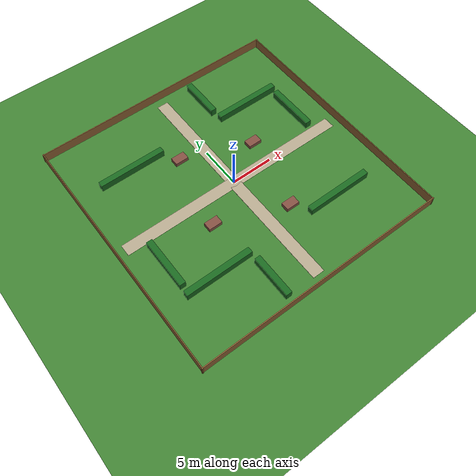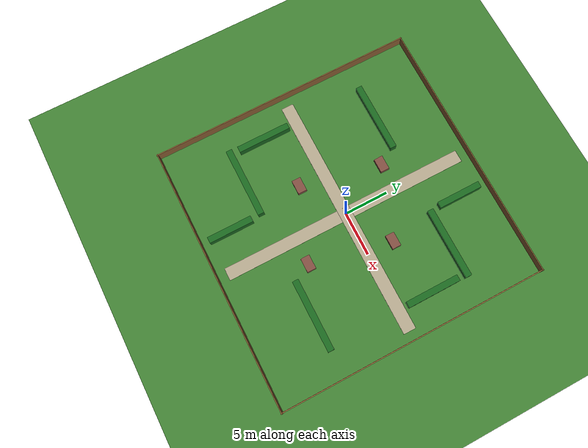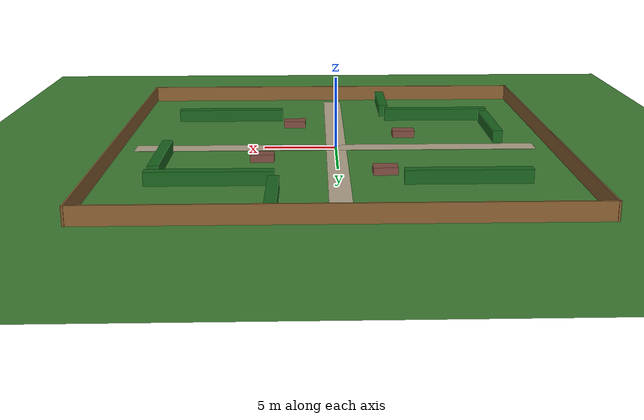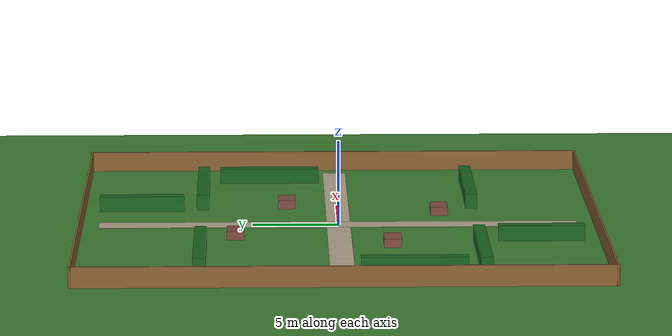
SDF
<sdf version="1.8">
 <world name="garden">
  <physics name="4ms" type="ignored">
   <max_step_size>0.004</max_step_size>
   <real_time_factor>1</real_time_factor>
  </physics>
  <plugin filename="ignition-gazebo-physics-system" name="ignition::gazebo::systems::Physics"/>
  <plugin filename="ignition-gazebo-user-commands-system" name="ignition::gazebo::systems::UserCommands"/>
  <plugin filename="ignition-gazebo-scene-broadcaster-system" name="ignition::gazebo::systems::SceneBroadcaster"/>
  <plugin filename="ignition-gazebo-sensors-system" name="ignition::gazebo::systems::Sensors">
   <render_engine>ogre2</render_engine>
  </plugin>
  <plugin filename="ignition-gazebo-contact-system" name="ignition::gazebo::systems::Contact"/>
  <plugin filename="ignition-gazebo-imu-system" name="ignition::gazebo::systems::Imu"/>
  <plugin filename="ignition-gazebo-navsat-system" name="ignition::gazebo::systems::NavSat"/>
  <spherical_coordinates>
   <surface_model>EARTH_WGS84</surface_model>
   <world_frame_orientation>ENU</world_frame_orientation>
   <latitude_deg>47.3977</latitude_deg>
   <longitude_deg>8.5456</longitude_deg>
   <elevation>0</elevation>
   <heading_deg>0</heading_deg>
  </spherical_coordinates>
  <light name="sun" type="directional">
   <pose>0 0 10 0 0 0</pose>
   <intensity>1</intensity>
   <direction>-0.5 0.1 -0.9</direction>
   <diffuse>0.8 0.8 0.8 1</diffuse>
   <specular>0.2 0.2 0.2 1</specular>
  </light>
  <model name="ground_plane">
   <static>true</static>
   <link name="link">
    <collision name="collision">
     <geometry><plane><normal>0 0 1</normal><size>100 100</size></plane></geometry>
    </collision>
    <visual name="visual">
     <geometry><plane><normal>0 0 1</normal><size>100 100</size></plane></geometry>
     <material><ambient>0.25 0.45 0.2 1</ambient><diffuse>0.25 0.5 0.2 1</diffuse></material>
    </visual>
   </link>
  </model>
  <model name="fence_n">
   <static>true</static>
   <pose>0 15 0.6 0 0 0</pose>
   <link name="l">
    <collision name="c"><geometry><box><size>30.2 0.1 1.2</size></box></geometry></collision>
    <visual name="v">
     <geometry><box><size>30.2 0.1 1.2</size></box></geometry>
     <material><ambient>0.55 0.38 0.2 1</ambient><diffuse>0.55 0.38 0.2 1</diffuse></material>
    </visual>
   </link>
  </model>
  <model name="fence_s">
   <static>true</static>
   <pose>0 -15 0.6 0 0 0</pose>
   <link name="l">
    <collision name="c"><geometry><box><size>30.2 0.1 1.2</size></box></geometry></collision>
    <visual name="v">
     <geometry><box><size>30.2 0.1 1.2</size></box></geometry>
     <material><ambient>0.55 0.38 0.2 1</ambient><diffuse>0.55 0.38 0.2 1</diffuse></material>
    </visual>
   </link>
  </model>
  <model name="fence_e">
   <static>true</static>
   <pose>15 0 0.6 0 0 0</pose>
   <link name="l">
    <collision name="c"><geometry><box><size>0.1 30.2 1.2</size></box></geometry></collision>
    <visual name="v">
     <geometry><box><size>0.1 30.2 1.2</size></box></geometry>
     <material><ambient>0.55 0.38 0.2 1</ambient><diffuse>0.55 0.38 0.2 1</diffuse></material>
    </visual>
   </link>
  </model>
  <model name="fence_w">
   <static>true</static>
   <pose>-15 0 0.6 0 0 0</pose>
   <link name="l">
    <collision name="c"><geometry><box><size>0.1 30.2 1.2</size></box></geometry></collision>
    <visual name="v">
     <geometry><box><size>0.1 30.2 1.2</size></box></geometry>
     <material><ambient>0.55 0.38 0.2 1</ambient><diffuse>0.55 0.38 0.2 1</diffuse></material>
    </visual>
   </link>
  </model>
  <model name="path_x">
   <static>true</static>
   <pose>0 0 0.011 0 0 0</pose>
   <link name="l">
    <visual name="v">
     <geometry><box><size>28 1.4 0.02</size></box></geometry>
     <material><ambient>0.7 0.65 0.55 1</ambient><diffuse>0.7 0.65 0.55 1</diffuse></material>
    </visual>
   </link>
  </model>
  <model name="path_y">
   <static>true</static>
   <pose>0 0 0.011 0 0 0</pose>
   <link name="l">
    <visual name="v">
     <geometry><box><size>1.4 28 0.02</size></box></geometry>
     <material><ambient>0.7 0.65 0.55 1</ambient><diffuse>0.7 0.65 0.55 1</diffuse></material>
    </visual>
   </link>
  </model>
  <model name="hedge_0">
   <static>true</static>
   <pose>-8 -8 0.45 0 0 0</pose>
   <link name="l">
    <collision name="c"><geometry><box><size>8 0.7 0.9</size></box></geometry></collision>
    <visual name="v">
     <geometry><box><size>8 0.7 0.9</size></box></geometry>
     <material><ambient>0.1 0.4 0.12 1</ambient><diffuse>0.1 0.4 0.12 1</diffuse></material>
    </visual>
   </link>
  </model>
  <model name="hedge_1">
   <static>true</static>
   <pose>8 -8 0.45 0 0 0</pose>
   <link name="l">
    <collision name="c"><geometry><box><size>8 0.7 0.9</size></box></geometry></collision>
    <visual name="v">
     <geometry><box><size>8 0.7 0.9</size></box></geometry>
     <material><ambient>0.1 0.4 0.12 1</ambient><diffuse>0.1 0.4 0.12 1</diffuse></material>
    </visual>
   </link>
  </model>
  <model name="hedge_2">
   <static>true</static>
   <pose>-8 8 0.45 0 0 0</pose>
   <link name="l">
    <collision name="c"><geometry><box><size>8 0.7 0.9</size></box></geometry></collision>
    <visual name="v">
     <geometry><box><size>8 0.7 0.9</size></box></geometry>
     <material><ambient>0.1 0.4 0.12 1</ambient><diffuse>0.1 0.4 0.12 1</diffuse></material>
    </visual>
   </link>
  </model>
  <model name="hedge_3">
   <static>true</static>
   <pose>8 8 0.45 0 0 0</pose>
   <link name="l">
    <collision name="c"><geometry><box><size>8 0.7 0.9</size></box></geometry></collision>
    <visual name="v">
     <geometry><box><size>8 0.7 0.9</size></box></geometry>
     <material><ambient>0.1 0.4 0.12 1</ambient><diffuse>0.1 0.4 0.12 1</diffuse></material>
    </visual>
   </link>
  </model>
  <model name="hedge_4">
   <static>true</static>
   <pose>-11.6 -4 0.45 0 0 0</pose>
   <link name="l">
    <collision name="c"><geometry><box><size>0.7 6 0.9</size></box></geometry></collision>
    <visual name="v">
     <geometry><box><size>0.7 6 0.9</size></box></geometry>
     <material><ambient>0.1 0.4 0.12 1</ambient><diffuse>0.1 0.4 0.12 1</diffuse></material>
    </visual>
   </link>
  </model>
  <model name="hedge_5">
   <static>true</static>
   <pose>11.6 4 0.45 0 0 0</pose>
   <link name="l">
    <collision name="c"><geometry><box><size>0.7 6 0.9</size></box></geometry></collision>
    <visual name="v">
     <geometry><box><size>0.7 6 0.9</size></box></geometry>
     <material><ambient>0.1 0.4 0.12 1</ambient><diffuse>0.1 0.4 0.12 1</diffuse></material>
    </visual>
   </link>
  </model>
  <model name="hedge_6">
   <static>true</static>
   <pose>-4 -11.6 0.45 0 0 0</pose>
   <link name="l">
    <collision name="c"><geometry><box><size>0.7 5 0.9</size></box></geometry></collision>
    <visual name="v">
     <geometry><box><size>0.7 5 0.9</size></box></geometry>
     <material><ambient>0.1 0.4 0.12 1</ambient><diffuse>0.1 0.4 0.12 1</diffuse></material>
    </visual>
   </link>
  </model>
  <model name="hedge_7">
   <static>true</static>
   <pose>4 11.6 0.45 0 0 0</pose>
   <link name="l">
    <collision name="c"><geometry><box><size>0.7 5 0.9</size></box></geometry></collision>
    <visual name="v">
     <geometry><box><size>0.7 5 0.9</size></box></geometry>
     <material><ambient>0.1 0.4 0.12 1</ambient><diffuse>0.1 0.4 0.12 1</diffuse></material>
    </visual>
   </link>
  </model>
  <model name="planter_0">
   <static>true</static>
   <pose>5 3 0.25 0 0 0</pose>
   <link name="l">
    <collision name="c"><geometry><box><size>1.6 1.0 0.5</size></box></geometry></collision>
    <visual name="v">
     <geometry><box><size>1.6 1.0 0.5</size></box></geometry>
     <material><ambient>0.5 0.3 0.25 1</ambient><diffuse>0.5 0.3 0.25 1</diffuse></material>
    </visual>
   </link>
  </model>
  <model name="planter_1">
   <static>true</static>
   <pose>-5 -3 0.25 0 0 0</pose>
   <link name="l">
    <collision name="c"><geometry><box><size>1.6 1.0 0.5</size></box></geometry></collision>
    <visual name="v">
     <geometry><box><size>1.6 1.0 0.5</size></box></geometry>
     <material><ambient>0.5 0.3 0.25 1</ambient><diffuse>0.5 0.3 0.25 1</diffuse></material>
    </visual>
   </link>
  </model>
  <model name="planter_2">
   <static>true</static>
   <pose>3 -6 0.25 0 0 0</pose>
   <link name="l">
    <collision name="c"><geometry><box><size>1.6 1.0 0.5</size></box></geometry></collision>
    <visual name="v">
     <geometry><box><size>1.6 1.0 0.5</size></box></geometry>
     <material><ambient>0.5 0.3 0.25 1</ambient><diffuse>0.5 0.3 0.25 1</diffuse></material>
    </visual>
   </link>
  </model>
  <model name="planter_3">
   <static>true</static>
   <pose>-3 6 0.25 0 0 0</pose>
   <link name="l">
    <collision name="c"><geometry><box><size>1.6 1.0 0.5</size></box></geometry></collision>
    <visual name="v">
     <geometry><box><size>1.6 1.0 0.5</size></box></geometry>
     <material><ambient>0.5 0.3 0.25 1</ambient><diffuse>0.5 0.3 0.25 1</diffuse></material>
    </visual>
   </link>
  </model>
 </world>
</sdf>
